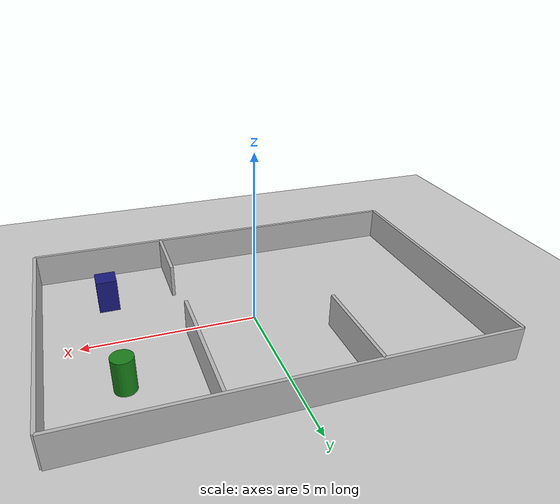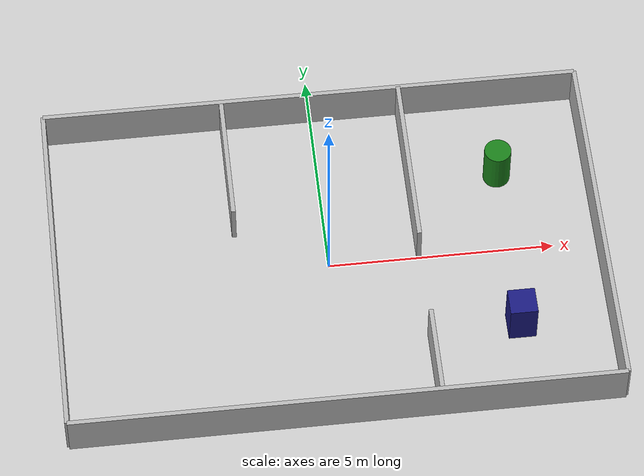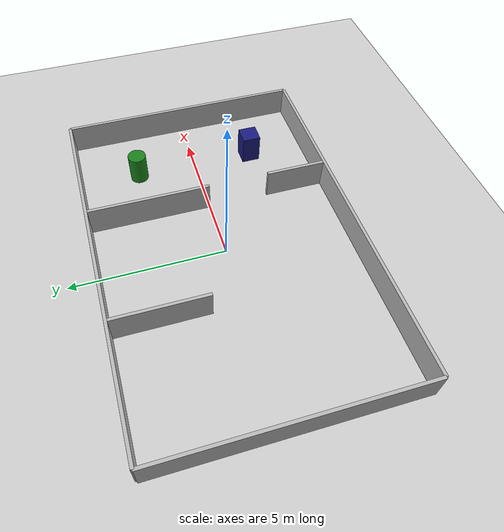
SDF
<?xml version="1.0" ?>
<sdf version="1.8">
  <world name="nav_test_world_v2">
    <physics name="default_physics" type="tpe">
      <max_step_size>0.001</max_step_size>
      <real_time_update_rate>1000</real_time_update_rate>
      <real_time_factor>1.0</real_time_factor>
    </physics>

    <light name="sun_main" type="directional">
      <pose>0 0 10 0 0 0</pose>
      <diffuse>1 1 1 1</diffuse>
      <direction>-0.5 0.1 -1</direction>
    </light>

    <model name="ground_plane">
      <static>true</static>
      <link name="link">
        <collision name="collision"><geometry><plane><normal>0 0 1</normal><size>30 30</size></plane></geometry></collision>
        <visual name="visual"><geometry><plane><normal>0 0 1</normal><size>30 30</size></plane></geometry>
        <material><ambient>0.8 0.8 0.8 1</ambient><diffuse>0.8 0.8 0.8 1</diffuse></material></visual>
      </link>
    </model>

    <model name="nav_complex_structure">
      <static>true</static>
      <link name="walls">
        <visual name="w_n"><pose>0 4 0.5 0 0 0</pose><geometry><box><size>12 0.1 1</size></box></geometry></visual>
        <visual name="w_s"><pose>0 -4 0.5 0 0 0</pose><geometry><box><size>12 0.1 1</size></box></geometry></visual>
        <visual name="w_w"><pose>-6 0 0.5 0 0 0</pose><geometry><box><size>0.1 8 1</size></box></geometry></visual>
        <visual name="w_e"><pose>6 0 0.5 0 0 0</pose><geometry><box><size>0.1 8 1</size></box></geometry></visual>

        <visual name="div_1"><pose>-2 2.5 0.5 0 0 0</pose><geometry><box><size>0.1 3 1</size></box></geometry></visual>
        <visual name="div_2"><pose>2 2 0.5 0 0 0</pose><geometry><box><size>0.1 4 1</size></box></geometry></visual>
        <visual name="div_3"><pose>2 -3 0.5 0 0 0</pose><geometry><box><size>0.1 2 1</size></box></geometry></visual>

        <visual name="p1"><pose>4 2 0.5 0 0 0</pose><geometry><cylinder><radius>0.3</radius><length>1</length></cylinder></geometry><material><diffuse>0.1 0.5 0.1 1</diffuse></material></visual>
        <visual name="p2"><pose>4 -2 0.5 0 0 0</pose><geometry><box><size>0.6 0.6 1</size></box></geometry><material><diffuse>0.1 0.1 0.5 1</diffuse></material></visual>

        <collision name="w_n_c"><pose>0 4 0.5 0 0 0</pose><geometry><box><size>12 0.1 1</size></box></geometry></collision>
        <collision name="w_s_c"><pose>0 -4 0.5 0 0 0</pose><geometry><box><size>12 0.1 1</size></box></geometry></collision>
        <collision name="w_w_c"><pose>-6 0 0.5 0 0 0</pose><geometry><box><size>0.1 8 1</size></box></geometry></collision>
        <collision name="w_e_c"><pose>6 0 0.5 0 0 0</pose><geometry><box><size>0.1 8 1</size></box></geometry></collision>
        <collision name="div_1_c"><pose>-2 2.5 0.5 0 0 0</pose><geometry><box><size>0.1 3 1</size></box></geometry></collision>
        <collision name="div_2_c"><pose>2 2 0.5 0 0 0</pose><geometry><box><size>0.1 4 1</size></box></geometry></collision>
        <collision name="div_3_c"><pose>2 -3 0.5 0 0 0</pose><geometry><box><size>0.1 2 1</size></box></geometry></collision>
      </link>
    </model>
  </world>
</sdf>
